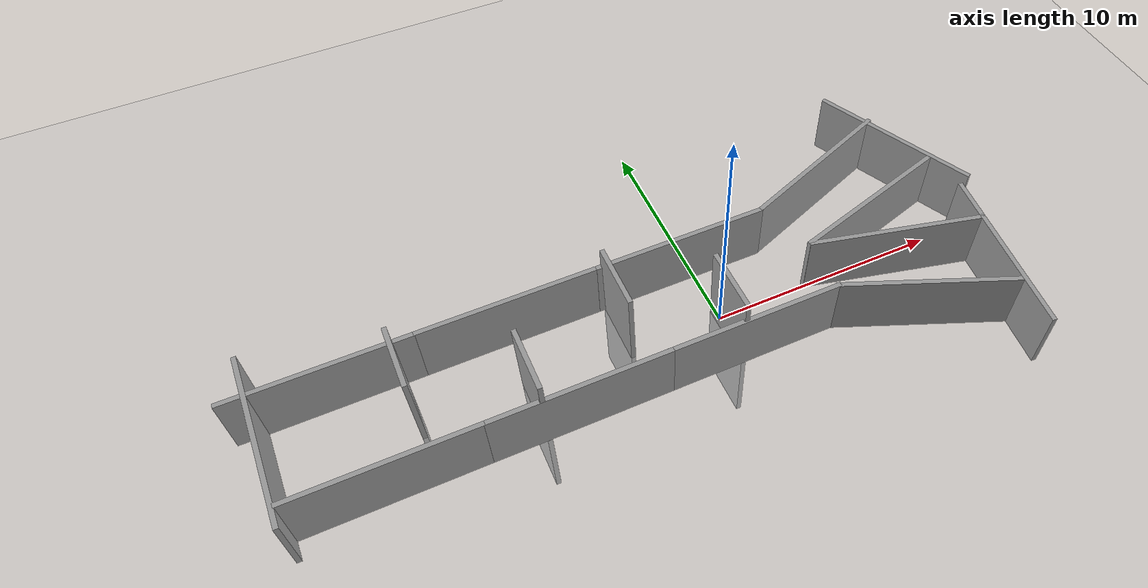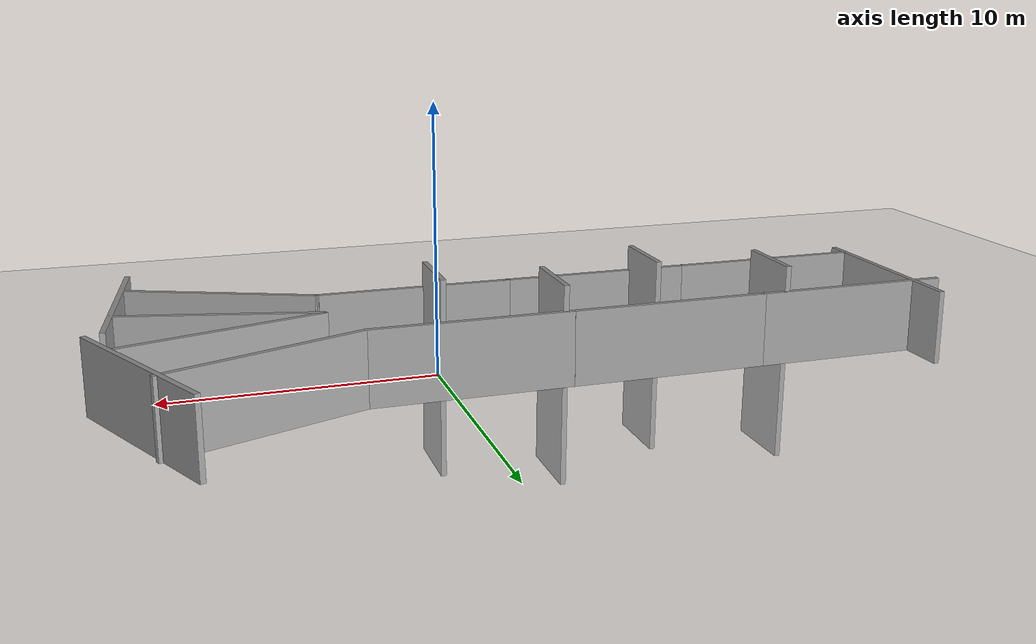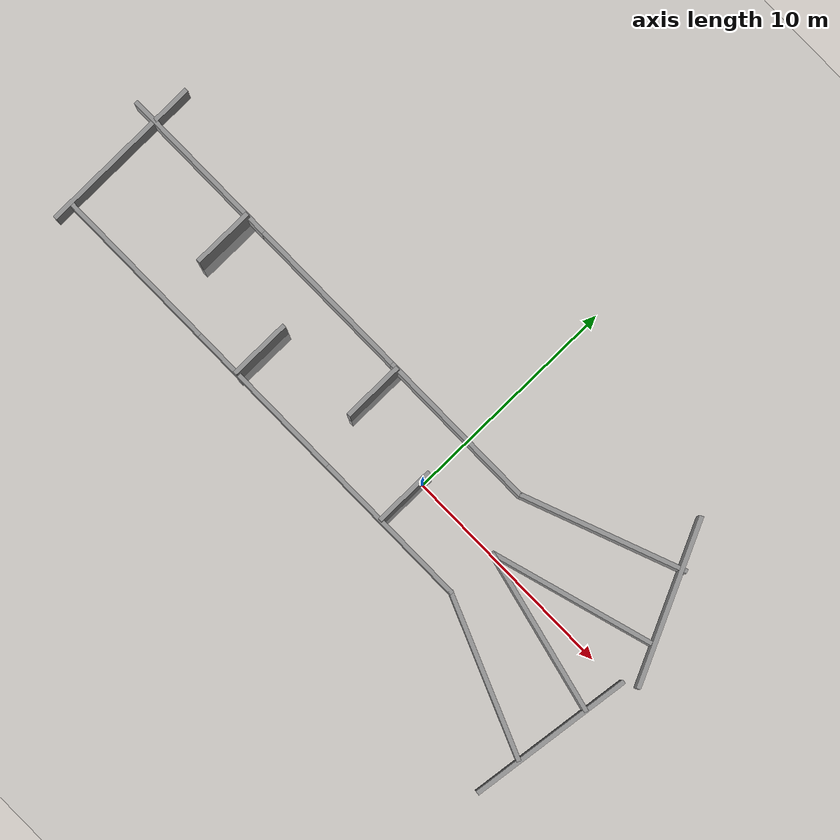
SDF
<sdf version="1.6">
 <world name="default">
  <light name="sun" type="directional">
   <pose>0 0 10 0 -0 0</pose>
   <diffuse>0.8 0.8 0.8 1</diffuse>
   <specular>0.2 0.2 0.2 1</specular>
   <attenuation>
    <range>1000</range>
    <constant>0.9</constant>
    <linear>0.01</linear>
    <quadratic>0.001</quadratic>
   </attenuation>
   <direction>-0.5 0.1 -0.9</direction>
  </light>
  <model name="ground_plane">
   <static>1</static>
   <link name="link">
    <collision name="collision">
     <geometry><plane><normal>0 0 1</normal><size>100 100</size></plane></geometry>
     <surface><friction><ode><mu>100</mu><mu2>50</mu2></ode></friction></surface>
    </collision>
    <visual name="visual">
     <cast_shadows>0</cast_shadows>
     <geometry><plane><normal>0 0 1</normal><size>100 100</size></plane></geometry>
     <material>
      <script><uri>file://media/materials/scripts/gazebo.material</uri><name>Gazebo/Grey</name></script>
     </material>
    </visual>
   </link>
  </model>
  <gravity>0 0 -9.8</gravity>
  <magnetic_field>6e-06 2.3e-05 -4.2e-05</magnetic_field>
  <atmosphere type="adiabatic"/>
  <physics name="default_physics" default="0" type="ode">
   <max_step_size>0.001</max_step_size>
   <real_time_factor>1</real_time_factor>
   <real_time_update_rate>1000</real_time_update_rate>
  </physics>
  <scene><ambient>0.4 0.4 0.4 1</ambient><background>0.7 0.7 0.7 1</background><shadows>1</shadows></scene>
  <spherical_coordinates>
   <surface_model>EARTH_WGS84</surface_model>
   <latitude_deg>0</latitude_deg>
   <longitude_deg>0</longitude_deg>
   <elevation>0</elevation>
   <heading_deg>0</heading_deg>
  </spherical_coordinates>
  <model name="grey_wall">
   <static>1</static>
   <link name="link">
    <pose>0 0 1.4 0 -0 0</pose>
    <collision name="collision"><geometry><box><size>7.5 0.2 2.8</size></box></geometry></collision>
    <visual name="visual">
     <cast_shadows>0</cast_shadows>
     <geometry><box><size>7.5 0.2 2.8</size></box></geometry>
     <material>
      <script>
       <uri>model://grey_wall/materials/scripts</uri>
       <uri>model://grey_wall/materials/textures</uri>
       <name>vrc/grey_wall</name>
      </script>
     </material>
    </visual>
   </link>
   <pose>-0.621972 2.52582 0 0 -0 0</pose>
  </model>
  <model name="grey_wall_0">
   <static>1</static>
   <link name="link">
    <pose>0 0 1.4 0 -0 0</pose>
    <collision name="collision"><geometry><box><size>7.5 0.2 2.8</size></box></geometry></collision>
    <visual name="visual">
     <cast_shadows>0</cast_shadows>
     <geometry><box><size>7.5 0.2 2.8</size></box></geometry>
     <material>
      <script>
       <uri>model://grey_wall/materials/scripts</uri>
       <uri>model://grey_wall/materials/textures</uri>
       <name>vrc/grey_wall</name>
      </script>
     </material>
    </visual>
   </link>
   <pose>-8.1217 2.52916 0 0 -0 0</pose>
  </model>
  <model name="grey_wall_1">
   <static>1</static>
   <link name="link">
    <pose>0 0 1.4 0 -0 0</pose>
    <collision name="collision"><geometry><box><size>7.5 0.2 2.8</size></box></geometry></collision>
    <visual name="visual">
     <cast_shadows>0</cast_shadows>
     <geometry><box><size>7.5 0.2 2.8</size></box></geometry>
     <material>
      <script>
       <uri>model://grey_wall/materials/scripts</uri>
       <uri>model://grey_wall/materials/textures</uri>
       <name>vrc/grey_wall</name>
      </script>
     </material>
    </visual>
   </link>
   <pose>6.58793 3.86918 0 0 -0 0.364603</pose>
  </model>
  <model name="grey_wall_2">
   <static>1</static>
   <link name="link">
    <pose>0 0 1.4 0 -0 0</pose>
    <collision name="collision"><geometry><box><size>7.5 0.2 2.8</size></box></geometry></collision>
    <visual name="visual">
     <cast_shadows>0</cast_shadows>
     <geometry><box><size>7.5 0.2 2.8</size></box></geometry>
     <material>
      <script>
       <uri>model://grey_wall/materials/scripts</uri>
       <uri>model://grey_wall/materials/textures</uri>
       <name>vrc/grey_wall</name>
      </script>
     </material>
    </visual>
   </link>
   <pose>-6.96903 -2.26151 0 0 -0 0</pose>
  </model>
  <model name="grey_wall_3">
   <static>1</static>
   <link name="link">
    <pose>0 0 1.4 0 -0 0</pose>
    <collision name="collision"><geometry><box><size>7.5 0.2 2.8</size></box></geometry></collision>
    <visual name="visual">
     <cast_shadows>0</cast_shadows>
     <geometry><box><size>7.5 0.2 2.8</size></box></geometry>
     <material>
      <script>
       <uri>model://grey_wall/materials/scripts</uri>
       <uri>model://grey_wall/materials/textures</uri>
       <name>vrc/grey_wall</name>
      </script>
     </material>
    </visual>
   </link>
   <pose>0.297121 -2.26017 0 0 -0 0</pose>
  </model>
  <model name="grey_wall_4">
   <static>1</static>
   <link name="link">
    <pose>0 0 1.4 0 -0 0</pose>
    <collision name="collision"><geometry><box><size>7.5 0.2 2.8</size></box></geometry></collision>
    <visual name="visual">
     <cast_shadows>0</cast_shadows>
     <geometry><box><size>7.5 0.2 2.8</size></box></geometry>
     <material>
      <script>
       <uri>model://grey_wall/materials/scripts</uri>
       <uri>model://grey_wall/materials/textures</uri>
       <name>vrc/grey_wall</name>
      </script>
     </material>
    </visual>
   </link>
   <pose>7.34922 -3.65706 0 0 0 -0.39216</pose>
  </model>
  <model name="grey_wall_5">
   <static>1</static>
   <link name="link">
    <pose>0 0 1.4 0 -0 0</pose>
    <collision name="collision"><geometry><box><size>7.5 0.2 2.8</size></box></geometry></collision>
    <visual name="visual">
     <cast_shadows>0</cast_shadows>
     <geometry><box><size>7.5 0.2 2.8</size></box></geometry>
     <material>
      <script>
       <uri>model://grey_wall/materials/scripts</uri>
       <uri>model://grey_wall/materials/textures</uri>
       <name>vrc/grey_wall</name>
      </script>
     </material>
    </visual>
   </link>
   <pose>7.57524 1.08995 0 0 -0 0.279983</pose>
  </model>
  <model name="grey_wall_6">
   <static>1</static>
   <link name="link">
    <pose>0 0 1.4 0 -0 0</pose>
    <collision name="collision"><geometry><box><size>7.5 0.2 2.8</size></box></geometry></collision>
    <visual name="visual">
     <cast_shadows>0</cast_shadows>
     <geometry><box><size>7.5 0.2 2.8</size></box></geometry>
     <material>
      <script>
       <uri>model://grey_wall/materials/scripts</uri>
       <uri>model://grey_wall/materials/textures</uri>
       <name>vrc/grey_wall</name>
      </script>
     </material>
    </visual>
   </link>
   <pose>7.65064 -0.832541 0 0 0 -0.238587</pose>
  </model>
  <model name="grey_wall_7">
   <static>1</static>
   <link name="link">
    <pose>0 0 1.4 0 -0 0</pose>
    <collision name="collision"><geometry><box><size>7.5 0.2 2.8</size></box></geometry></collision>
    <visual name="visual">
     <cast_shadows>0</cast_shadows>
     <geometry><box><size>7.5 0.2 2.8</size></box></geometry>
     <material>
      <script>
       <uri>model://grey_wall/materials/scripts</uri>
       <uri>model://grey_wall/materials/textures</uri>
       <name>vrc/grey_wall</name>
      </script>
     </material>
    </visual>
   </link>
   <pose>10.491 3.8232 0 0 0 -1.12671</pose>
  </model>
  <model name="grey_wall_8">
   <static>1</static>
   <link name="link">
    <pose>0 0 1.4 0 -0 0</pose>
    <collision name="collision"><geometry><box><size>7.5 0.2 2.8</size></box></geometry></collision>
    <visual name="visual">
     <cast_shadows>0</cast_shadows>
     <geometry><box><size>7.5 0.2 2.8</size></box></geometry>
     <material>
      <script>
       <uri>model://grey_wall/materials/scripts</uri>
       <uri>model://grey_wall/materials/textures</uri>
       <name>vrc/grey_wall</name>
      </script>
     </material>
    </visual>
   </link>
   <pose>11.022 -3.48815 0 0 -0 1.44689</pose>
  </model>
  <model name="grey_wall_9">
   <static>1</static>
   <link name="link">
    <pose>0 0 1.4 0 -0 0</pose>
    <collision name="collision"><geometry><box><size>7.5 0.2 2.8</size></box></geometry></collision>
    <visual name="visual">
     <cast_shadows>0</cast_shadows>
     <geometry><box><size>7.5 0.2 2.8</size></box></geometry>
     <material>
      <script>
       <uri>model://grey_wall/materials/scripts</uri>
       <uri>model://grey_wall/materials/textures</uri>
       <name>vrc/grey_wall</name>
      </script>
     </material>
    </visual>
   </link>
   <pose>-15.5759 2.52649 0 0 -0 0</pose>
  </model>
  <model name="grey_wall_10">
   <static>1</static>
   <link name="link">
    <pose>0 0 1.4 0 -0 0</pose>
    <collision name="collision"><geometry><box><size>7.5 0.2 2.8</size></box></geometry></collision>
    <visual name="visual">
     <cast_shadows>0</cast_shadows>
     <geometry><box><size>7.5 0.2 2.8</size></box></geometry>
     <material>
      <script>
       <uri>model://grey_wall/materials/scripts</uri>
       <uri>model://grey_wall/materials/textures</uri>
       <name>vrc/grey_wall</name>
      </script>
     </material>
    </visual>
   </link>
   <pose>-14.4213 -2.26045 0 0 -0 0</pose>
  </model>
  <model name="grey_wall_11">
   <static>1</static>
   <link name="link">
    <pose>0 0 1.4 0 -0 0</pose>
    <collision name="collision"><geometry><box><size>7.5 0.2 2.8</size></box></geometry></collision>
    <visual name="visual">
     <cast_shadows>0</cast_shadows>
     <geometry><box><size>7.5 0.2 2.8</size></box></geometry>
     <material>
      <script>
       <uri>model://grey_wall/materials/scripts</uri>
       <uri>model://grey_wall/materials/textures</uri>
       <name>vrc/grey_wall</name>
      </script>
     </material>
    </visual>
   </link>
   <pose>-12.7609 -0.244827 0 1.56746 -1.55899 3.14159</pose>
  </model>
  <model name="grey_wall_11_clone">
   <static>1</static>
   <link name="link">
    <pose>0 0 1.4 0 -0 0</pose>
    <collision name="collision"><geometry><box><size>7.5 0.2 2.8</size></box></geometry></collision>
    <visual name="visual">
     <cast_shadows>0</cast_shadows>
     <geometry><box><size>7.5 0.2 2.8</size></box></geometry>
     <material>
      <script>
       <uri>model://grey_wall/materials/scripts</uri>
       <uri>model://grey_wall/materials/textures</uri>
       <name>vrc/grey_wall</name>
      </script>
     </material>
    </visual>
   </link>
   <pose>-8.46213 -2.35109 0 1.56746 -1.55899 3.14159</pose>
  </model>
  <model name="grey_wall_11_clone_0">
   <static>1</static>
   <link name="link">
    <pose>0 0 1.4 0 -0 0</pose>
    <collision name="collision"><geometry><box><size>7.5 0.2 2.8</size></box></geometry></collision>
    <visual name="visual">
     <cast_shadows>0</cast_shadows>
     <geometry><box><size>7.5 0.2 2.8</size></box></geometry>
     <material>
      <script>
       <uri>model://grey_wall/materials/scripts</uri>
       <uri>model://grey_wall/materials/textures</uri>
       <name>vrc/grey_wall</name>
      </script>
     </material>
    </visual>
   </link>
   <pose>-4.02786 -0.244002 0 1.56746 -1.55899 3.14159</pose>
  </model>
  <model name="grey_wall_11_clone_1">
   <static>1</static>
   <link name="link">
    <pose>0 0 1.4 0 -0 0</pose>
    <collision name="collision"><geometry><box><size>7.5 0.2 2.8</size></box></geometry></collision>
    <visual name="visual">
     <cast_shadows>0</cast_shadows>
     <geometry><box><size>7.5 0.2 2.8</size></box></geometry>
     <material>
      <script>
       <uri>model://grey_wall/materials/scripts</uri>
       <uri>model://grey_wall/materials/textures</uri>
       <name>vrc/grey_wall</name>
      </script>
     </material>
    </visual>
   </link>
   <pose>-0.08864 -2.3013 0 1.56746 -1.55899 3.14159</pose>
  </model>
  <model name="grey_wall_10_clone">
   <static>1</static>
   <link name="link">
    <pose>0 0 1.4 0 -0 0</pose>
    <collision name="collision"><geometry><box><size>7.5 0.2 2.8</size></box></geometry></collision>
    <visual name="visual">
     <cast_shadows>0</cast_shadows>
     <geometry><box><size>7.5 0.2 2.8</size></box></geometry>
     <material>
      <script>
       <uri>model://grey_wall/materials/scripts</uri>
       <uri>model://grey_wall/materials/textures</uri>
       <name>vrc/grey_wall</name>
      </script>
     </material>
    </visual>
   </link>
   <pose>-18.2297 0.595803 0 0 0 -1.56907</pose>
  </model>
 </world>
</sdf>
